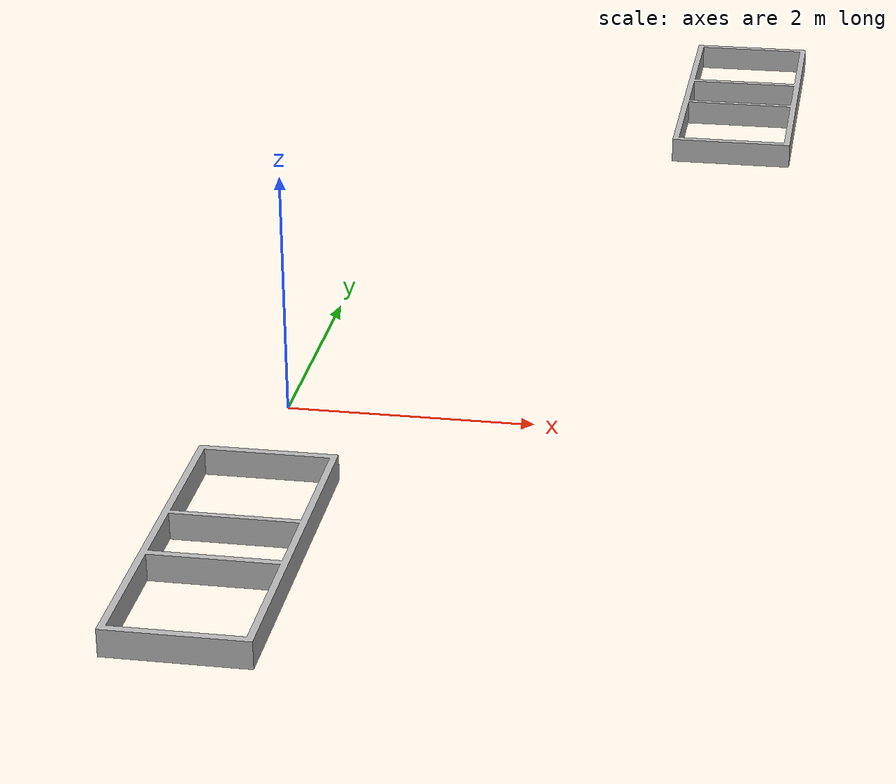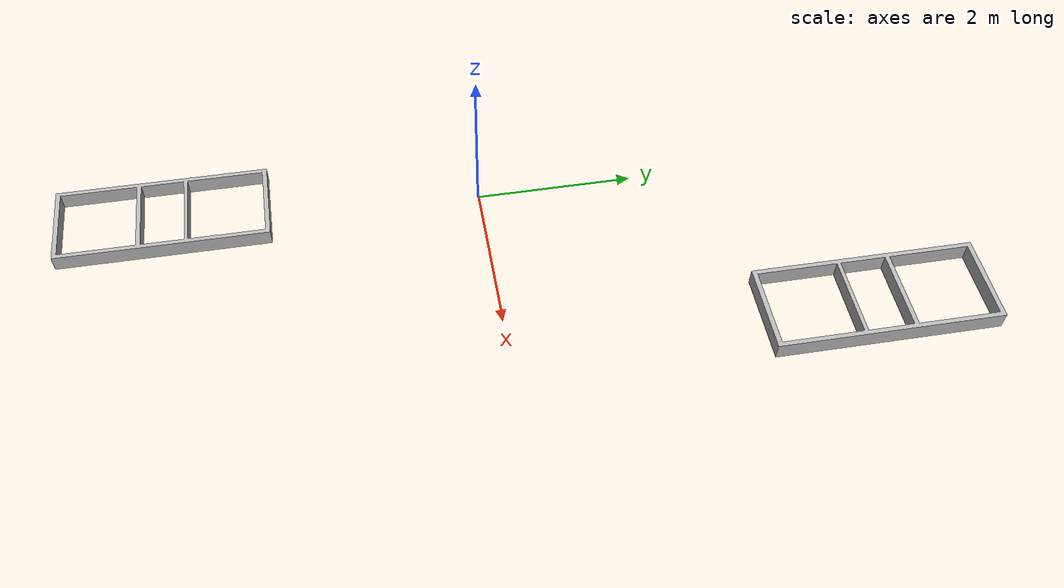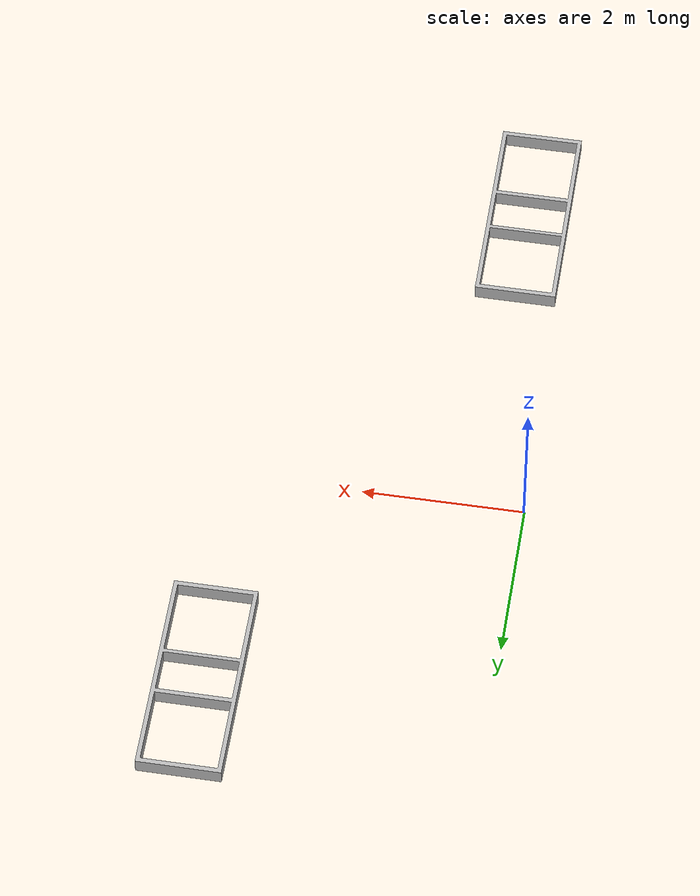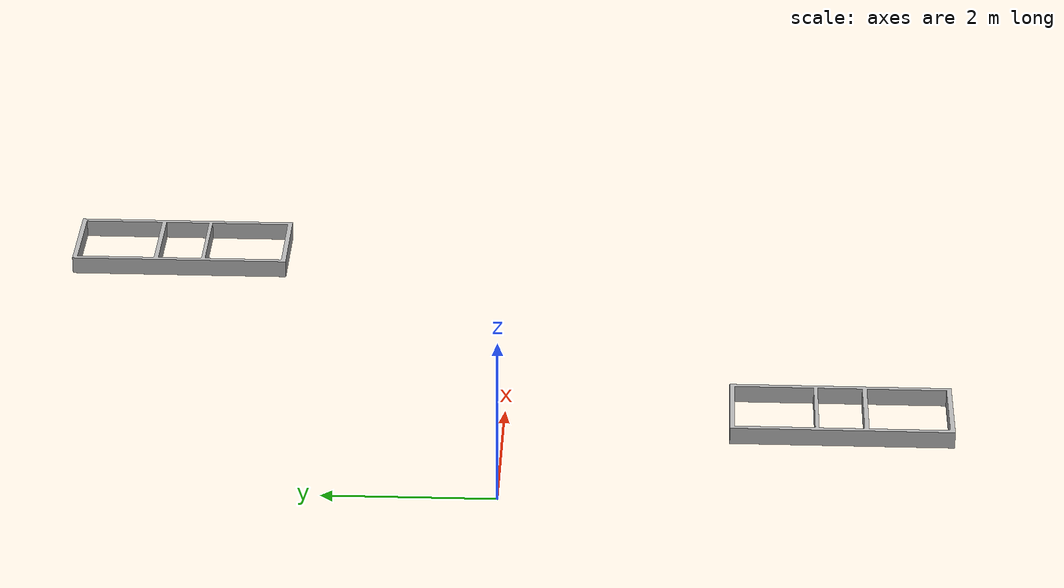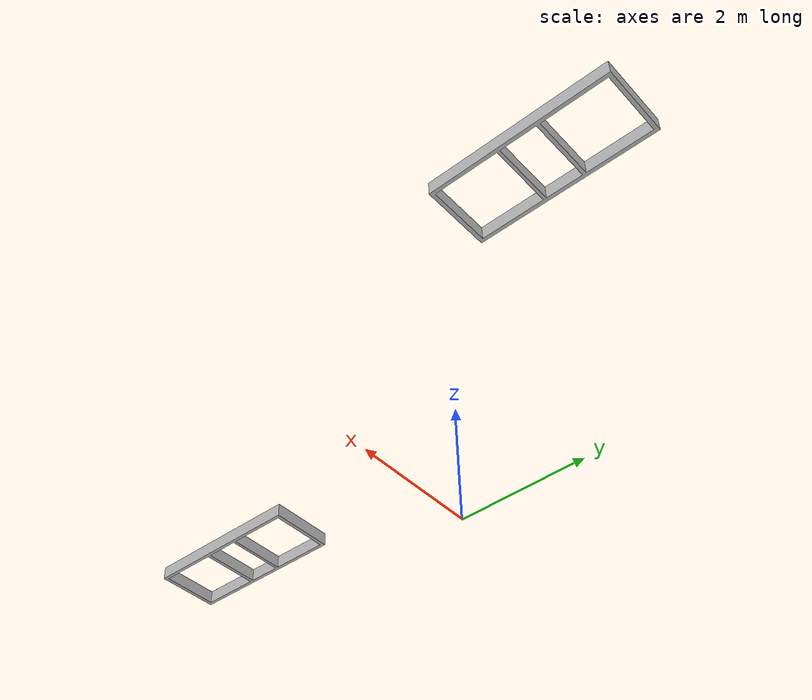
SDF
<?xml version="1.0"?>
<sdf version="1.6">
  <model name="new_airbase">
    <static>true</static>
    <link name="airbases_link">
      <visual name="visual_airbases">
        <cast_shadows>true</cast_shadows>
        <geometry>
          <mesh>
            <uri>model://cbrAirbases/meshes/airbase.dae</uri>
          </mesh>
        </geometry>
        <material>
          <script>
            <uri>model://cbrAirbases/materials/scripts</uri>
            <uri>model://cbrAirbases/materials/textures</uri>
            <name>airbase/color</name>
          </script>
        </material>
      </visual>
      <collision name="collision_airbases">
        <geometry>
          <mesh>
            <uri>model://cbrAirbases/meshes/airbase.dae</uri>
          </mesh>
        </geometry>
      </collision>
    </link>
  </model>
</sdf>
